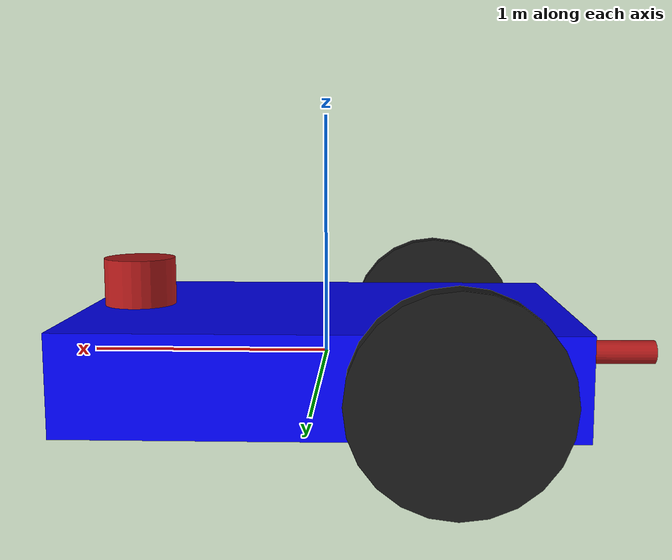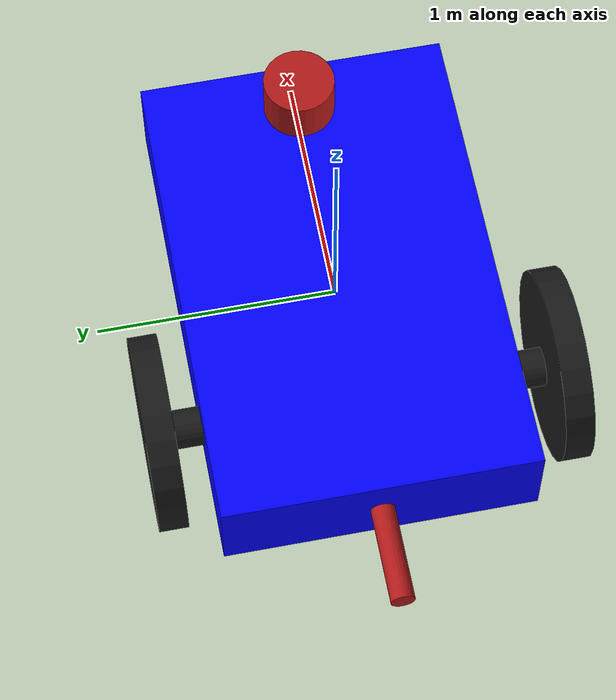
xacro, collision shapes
<?xml version="1.0" ?>

<robot name="robot" xmlns:xacro="http://www.ros.org/wiki/xacro">

    <xacro:include filename="$(find robot_description)/urdf/robot.gazebo" />

    <!-- Parameters -->
    <xacro:property name="chassis_mass" value="10" />
    <xacro:property name="pi" value="3.1415926" />
    <!-- Link - chassis -->
    <link name="link_chassis">
        <inertial>
            <mass value="${chassis_mass}" />
            <origin xyz="0 0 0.3" rpy="0 0 0" />
            <inertia ixx="1.5417" ixy="0" ixz="0" iyy="3.467" iyz="0" izz="4.742" />
        </inertial>

        <collision>
            <geometry>
                <box size="2 1.3 0.4" />
            </geometry>
        </collision>

        <visual>
            <geometry>
                <mesh filename="package://robot_description/meshes/chassis.stl" />
            </geometry>
            <material name="Blue">
                <color rgba="0 0 1 1" />
            </material>
        </visual>
    </link>

    <!-- Joint - chassis / left wheel -->
    <joint name="joint_chassis_left_wheel" type="continuous">
        <origin rpy="0 0 0" xyz="-0.5 0.65 0" />
        <child link="link_left_wheel" />
        <parent link="link_chassis" />
        <axis rpy="0 0 0" xyz="0 1 0" />
        <limit effort="10000" velocity="1000" />
        <joint_properties damping="1.0" friction="1.0" />
    </joint>

    <!-- Link - left wheel -->
    <link name="link_left_wheel">
        <inertial>
            <mass value="1" />
            <origin xyz="0 0 0" rpy="0 0 0" />
            <inertia ixx="0.002526666666667" ixy="0" ixz="0" iyy="0.002526666666667" iyz="0" izz="0.005"/>
        </inertial>

        <!-- Tires -->
        <collision>
            <origin rpy="${pi/2} 0 0" xyz="0 0.18 0" />
            <geometry>
                <cylinder length="0.12" radius="0.4"/>
            </geometry>
        </collision>
        <visual>
            <origin rpy="${pi/2} 0 0" xyz="0 0.18 0" />
            <geometry>
                <mesh filename="package://robot_description/meshes/wheel.stl" />
            </geometry>
            <material name="Black">
                <color rgba="0.1 0.1 0.1 1" />
            </material>
        </visual>

        <!-- Axle -->
        <collision>
            <origin rpy="${pi/2} 0 0" xyz="0 0.06 0" />
            <geometry>
                <cylinder length="0.12" radius="0.08"/>
            </geometry>
        </collision>
        <visual>
            <origin rpy="${pi/2} 0 0" xyz="0 0.06 0" />
            <geometry>
                <cylinder length="0.12" radius="0.08"/>
            </geometry>
            <material name="Grey">
                <color rgba="0.6 0.6 0.6 1" />
            </material>
        </visual>

        <!-- Hubcap -->
        <visual>
            <origin rpy="{pi/2} 0 0" xyz="0 0.25 0" />
            <geometry>
                <box size="0.02 0.5 0.02" />
            </geometry>
            <material name="Grey">
                <color rgba="0.6 0.6 0.6 1" />
            </material>
        </visual>
    </link>

    <!-- Joint - chassis / Right wheel -->
    <joint name="joint_chassis_right_wheel" type="continuous">
        <origin rpy="0 0 0" xyz="-0.5 -0.65 0" />
        <child link="link_right_wheel" />
        <parent link="link_chassis" />
        <axis rpy="0 0 0" xyz="0 1 0" />
        <limit effort="10000" velocity="1000" />
        <joint_properties damping="1.0" friction="1.0" />
    </joint>

    <!-- Link - Right wheel -->
    <link name="link_right_wheel">
        <inertial>
            <mass value="1" />
            <origin xyz="0 0 0" rpy="0 0 0" />
            <inertia ixx="0.002526666666667" ixy="0" ixz="0" iyy="0.002526666666667" iyz="0" izz="0.005"/>
        </inertial>

        <!-- Tires -->
        <collision>
            <origin rpy="${pi/2} 0 0" xyz="0 -0.18 0" />
            <geometry>
                <cylinder length="0.12" radius="0.4"/>
            </geometry>
        </collision>
        <visual>
            <origin rpy="${pi/2} 0 0" xyz="0 -0.18 0" />
            <geometry>
                <mesh filename="package://robot_description/meshes/wheel.stl" />
            </geometry>
            <material name="Black">
                <color rgba="0.1 0.1 0.1 0" />
            </material>
        </visual>

        <!-- Axle -->
        <collision>
            <origin rpy="${pi/2} 0 0" xyz="0 -0.06 0" />
            <geometry>
                <cylinder length="0.12" radius="0.08"/>
            </geometry>
        </collision>
        <visual>
            <origin rpy="${pi/2} 0 0" xyz="0 -0.06 0" />
            <geometry>
                <cylinder length="0.12" radius="0.08"/>
            </geometry>
            <material name="Grey">
                <color rgba="0.6 0.6 0.6 1" />
            </material>
        </visual>

        <!-- Hubcap -->
        <visual>
            <origin rpy="${pi/2} 0 0" xyz="0 0.25 0" />
            <geometry>
                <box size="0.02 0.5 0.02" />
            </geometry>
            <material name="Grey">
                <color rgba="0.6 0.6 0.6 1" />
            </material>
        </visual>
    </link>

    <!-- Joint - Chassis / Caster wheel -->
    <joint name="joint_chassis_caster_wheel" type="fixed">
        <origin rpy="0 0 0" xyz="0.8 0 -0.15" />
        <child link="link_caster_wheel" />
        <parent link="link_chassis" />
        <joint_properties damping="1.0" friction="1.0" />
    </joint>

    <!-- Link - Caster wheel -->
    <link name="link_caster_wheel">
        <inertial>
            <mass value="1" />
            <origin xyz="0 0 0" rpy="0 0 0" />
            <inertia ixx="0.002526666666667" ixy="0" ixz="0" iyy="0.002526666666667" iyz="0" izz="0.005"/>
        </inertial>
        <!-- Caster Wheel Support -->
        <collision>
            <origin rpy="0 0 0" xyz="0 0 -0.03" />
            <geometry>
                <sphere radius="0.2" />
            </geometry>
        </collision>

        <visual>
            <origin rpy="0 0 0" xyz="0 0 -0.03" />
            <geometry>
                <sphere radius="0.2" />
            </geometry>
            <material name="DarkBlue">
                <color rgba="0.2 0.2 0.4 1" />
            </material>
        </visual>

        <!-- Caster Wheel -->
        <collision>
            <origin rpy="0 0 0" xyz="0 0 -0.15" />
            <geometry>
                <sphere radius="0.1" />
            </geometry>
        </collision>

        <visual>
            <origin rpy="0 0 0" xyz="0 0 -0.15" />
            <geometry>
                <sphere radius="0.1" />
            </geometry>
            <material name="Grey">
                <color rgba="0.6 0.6 0.6 1" />
            </material>
        </visual>
    </link>

    <!-- Joint - Chassis/laser_scan -->
    <joint name="joint_laser_scan_chassis" type="fixed">
        <origin rpy="0 0 0" xyz="0.8 0 0.3" />
        <child link="link_laser_scan" />
        <parent link="link_chassis" />
        <joint_properties damping="1.0" friction="1.0" />
    </joint>

    <!-- Link - Laser Scan  -->
    <link name="link_laser_scan">
        <inertial>
            <origin xyz="0 0 0" rpy="0 0 0" />
            <mass value="0.5" />
            <inertia ixx="0.000252666666667" ixy="0" ixz="0" iyy="0.000252666666667" iyz="0" izz="0.0005" />
        </inertial>
        <visual>
            <origin xyz="0 0 0" rpy="0 0 0" />
            <geometry>
                <cylinder radius="0.15" length="0.20" />
            </geometry>
            <material name="Red">
                <color rgba="0.7 0.1 0.1 1" />
            </material>
        </visual>
        <collision>
            <origin xyz="0 0 0" rpy="0 0 0"/>
            <geometry>
                <cylinder radius="0.15" length="0.20"/>
            </geometry>
        </collision>
    </link>

    <!-- Joint - Chassis/tail -->
    <joint name="joint_tail" type="continuous">
        <origin rpy="0 0 0" xyz="-1 0 0" />
        <axis rpy="0 0 0" xyz="0 1 0" />
        <parent link="link_chassis" />
        <child link="link_tail" />
        <joint_properties damping="1.0" friction="1.0" />
    </joint>

    <!-- link - Robot tail -->
    <link name="link_tail">
        <inertial>
            <origin xyz="0 0 0" rpy="0 0 0" />
            <mass value="0.5" />
            <inertia ixx="0.000252666666667" ixy="0" ixz="0" iyy="0.000252666666667" iyz="0" izz="0.0005" />
        </inertial>
        <visual>
            <origin xyz="-0.2 0 0" rpy="0 ${pi/2} 0"/>
            <geometry>
                <cylinder radius="0.05" length="0.40"/>
            </geometry>
            <material name="Red">
                <color rgba="0.7 0.1 0.1 1" />
            </material>
        </visual>
        <collision>
            <origin xyz="-0.2 0 0" rpy="0 ${pi/2} 0"/>
            <geometry>
                <cylinder radius="0.05" length="0.40"/>
            </geometry>
        </collision>
    </link>

    <transmission name="tran_tail">
        <type>transmission_interface/SimpleTransmission</type>
        <joint name="joint_tail">
            <hardwareInterface>hardware_interface/EffortJointInterface</hardwareInterface>
        </joint>
        <actuator name="motor_joint_tail">
            <hardwareInterface>hardware_interface/EffortJointInterface</hardwareInterface>
            <mechanicalReduction>1</mechanicalReduction>
        </actuator>
    </transmission>
</robot>
